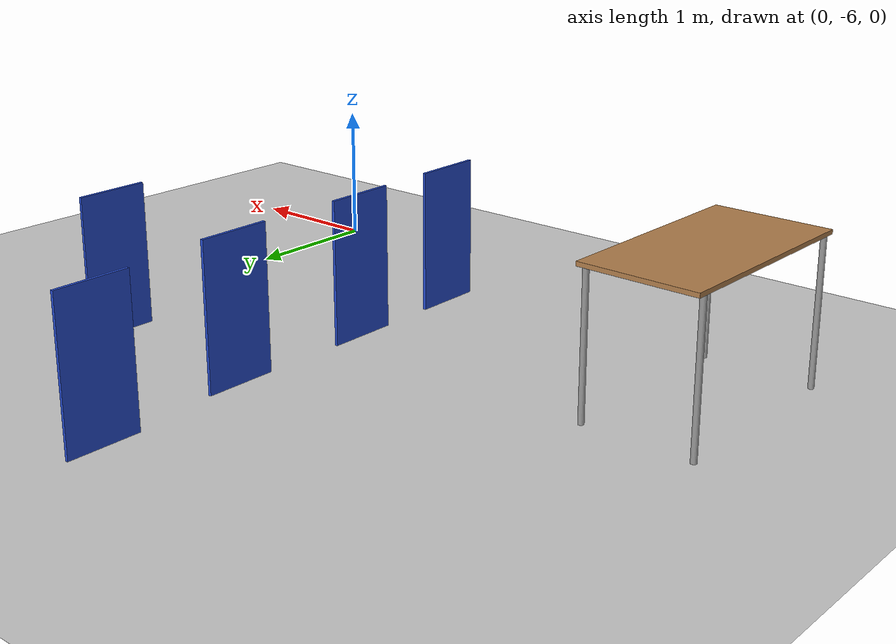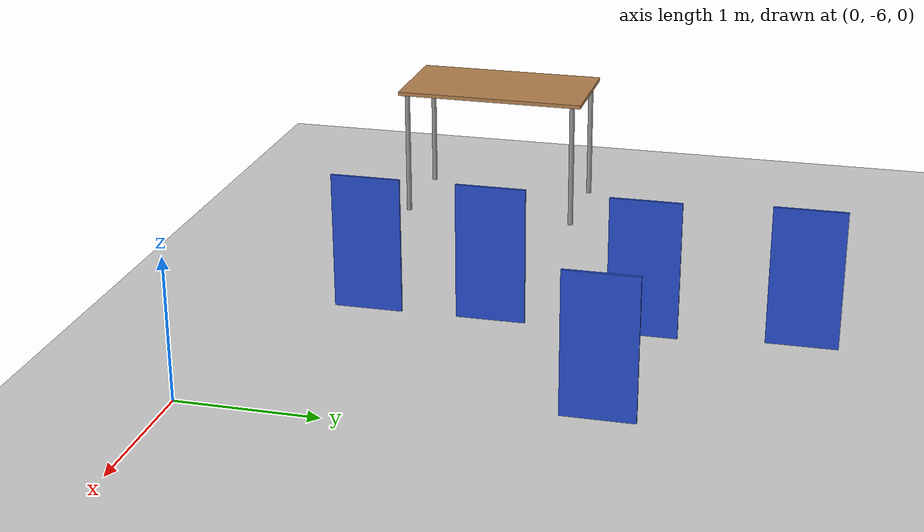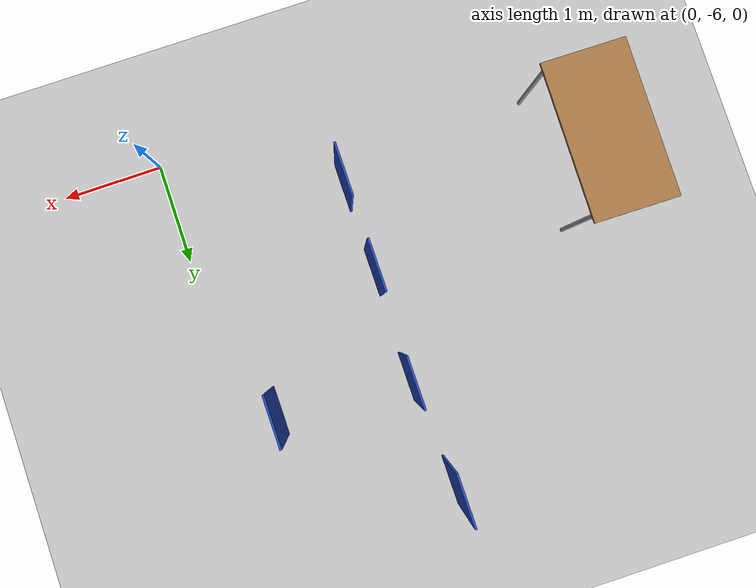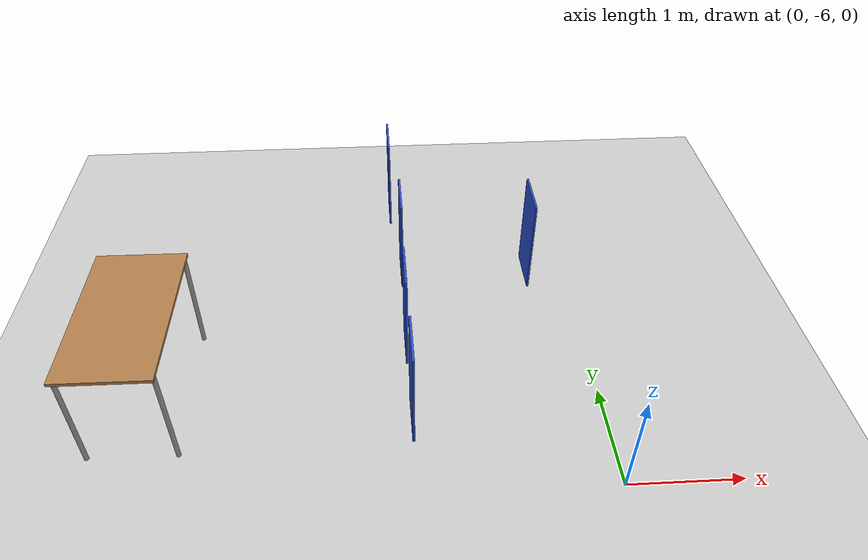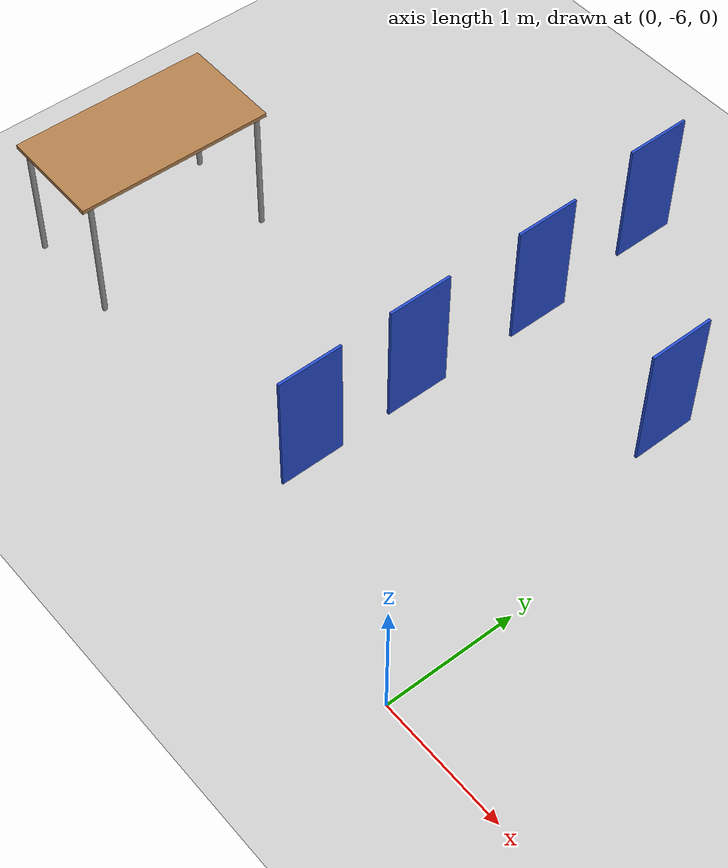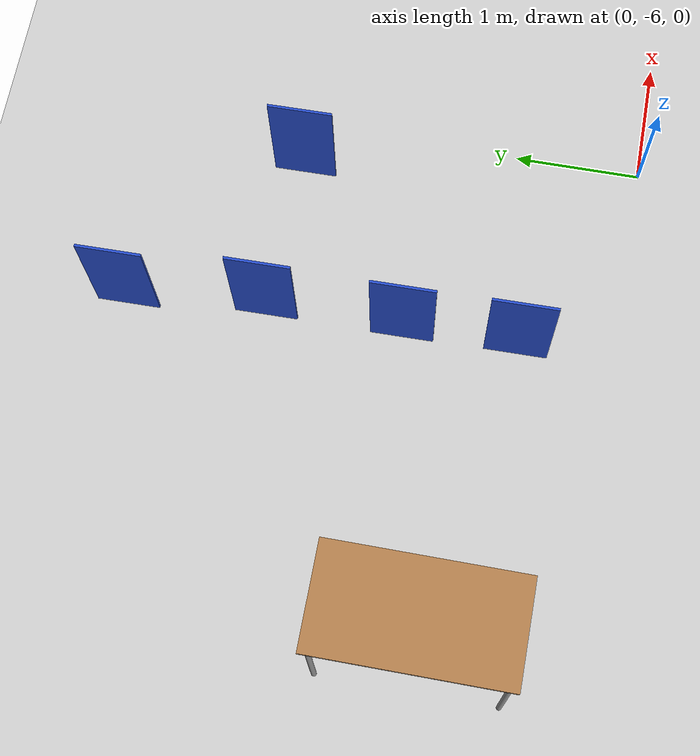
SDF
<sdf version="1.6">
 <world name="default">
  <model name="ground_plane">
   <static>1</static>
   <link name="link">
    <collision name="collision">
     <geometry><plane><normal>0 0 1</normal><size>100 100</size></plane></geometry>
     <surface><friction><ode><mu>100</mu><mu2>50</mu2></ode></friction></surface>
    </collision>
    <visual name="visual">
     <cast_shadows>0</cast_shadows>
     <geometry><plane><normal>0 0 1</normal><size>100 100</size></plane></geometry>
     <material>
      <script><uri>file://media/materials/scripts/gazebo.material</uri><name>Gazebo/Grey</name></script>
     </material>
    </visual>
   </link>
  </model>
  <model name="table_0">
   <static>1</static>
   <link name="link">
    <collision name="surface">
     <pose>0 0 1 0 -0 0</pose>
     <geometry><box><size>1.5 0.8 0.03</size></box></geometry>
     <surface><friction><ode><mu>0.6</mu><mu2>0.6</mu2></ode></friction></surface>
    </collision>
    <visual name="visual1">
     <pose>0 0 1 0 -0 0</pose>
     <geometry><box><size>1.5 0.8 0.03</size></box></geometry>
     <material>
      <script><uri>file://media/materials/scripts/gazebo.material</uri><name>Gazebo/Wood</name></script>
     </material>
    </visual>
    <collision name="front_left_leg">
     <pose>0.68 0.38 0.5 0 -0 0</pose>
     <geometry><cylinder><radius>0.02</radius><length>1</length></cylinder></geometry>
    </collision>
    <visual name="front_left_leg">
     <pose>0.68 0.38 0.5 0 -0 0</pose>
     <geometry><cylinder><radius>0.02</radius><length>1</length></cylinder></geometry>
     <material>
      <script><uri>file://media/materials/scripts/gazebo.material</uri><name>Gazebo/Grey</name></script>
     </material>
    </visual>
    <collision name="front_right_leg">
     <pose>0.68 -0.38 0.5 0 -0 0</pose>
     <geometry><cylinder><radius>0.02</radius><length>1</length></cylinder></geometry>
    </collision>
    <visual name="front_right_leg">
     <pose>0.68 -0.38 0.5 0 -0 0</pose>
     <geometry><cylinder><radius>0.02</radius><length>1</length></cylinder></geometry>
     <material>
      <script><uri>file://media/materials/scripts/gazebo.material</uri><name>Gazebo/Grey</name></script>
     </material>
    </visual>
    <collision name="back_right_leg">
     <pose>-0.68 -0.38 0.5 0 -0 0</pose>
     <geometry><cylinder><radius>0.02</radius><length>1</length></cylinder></geometry>
    </collision>
    <visual name="back_right_leg">
     <pose>-0.68 -0.38 0.5 0 -0 0</pose>
     <geometry><cylinder><radius>0.02</radius><length>1</length></cylinder></geometry>
     <material>
      <script><uri>file://media/materials/scripts/gazebo.material</uri><name>Gazebo/Grey</name></script>
     </material>
    </visual>
    <collision name="back_left_leg">
     <pose>-0.68 0.38 0.5 0 -0 0</pose>
     <geometry><cylinder><radius>0.02</radius><length>1</length></cylinder></geometry>
    </collision>
    <visual name="back_left_leg">
     <pose>-0.68 0.38 0.5 0 -0 0</pose>
     <geometry><cylinder><radius>0.02</radius><length>1</length></cylinder></geometry>
     <material>
      <script><uri>file://media/materials/scripts/gazebo.material</uri><name>Gazebo/Grey</name></script>
     </material>
    </visual>
   </link>
   <pose>-4.03117 -4.81166 0 0 0 -1.57951</pose>
  </model>
  <model name="picture_clone_clone">
   <link name="link">
    <pose>0.161006 0.582358 0 0 -0 0</pose>
    <inertial>
     <mass>1</mass>
     <inertia>
      <ixx>0.166667</ixx>
      <ixy>0</ixy>
      <ixz>0</ixz>
      <iyy>0.166667</iyy>
      <iyz>0</iyz>
      <izz>0.166667</izz>
     </inertia>
    </inertial>
    <visual name="visual">
     <geometry><box><size>0.5 0.02 1</size></box></geometry>
     <material>
      <script><name>Gazebo/Blue</name><uri>file://media/materials/scripts/gazebo.material</uri></script>
      <shader type="pixel"><normal_map>__default__</normal_map></shader>
      <ambient>0.3 0.3 0.3 1</ambient>
      <diffuse>0.7 0.7 0.7 1</diffuse>
      <specular>0.01 0.01 0.01 1</specular>
      <emissive>0 0 0 1</emissive>
     </material>
    </visual>
    <collision name="collision">
     <geometry><box><size>0.5 0.02 1</size></box></geometry>
     <surface>
      <friction>
       <ode><mu>1</mu><mu2>1</mu2><fdir1>0 0 0</fdir1><slip1>0</slip1><slip2>0</slip2></ode>
       <torsional>
        <coefficient>1</coefficient>
        <patch_radius>0</patch_radius>
        <surface_radius>0</surface_radius>
        <use_patch_radius>1</use_patch_radius>
        <ode><slip>0</slip></ode>
       </torsional>
      </friction>
      <bounce><restitution_coefficient>0</restitution_coefficient><threshold>1e+06</threshold></bounce>
      <contact>
       <collide_without_contact>0</collide_without_contact>
       <collide_without_contact_bitmask>1</collide_without_contact_bitmask>
       <collide_bitmask>1</collide_bitmask>
       <ode>
        <soft_cfm>0</soft_cfm>
        <soft_erp>0.2</soft_erp>
        <kp>1e+13</kp>
        <kd>1</kd>
        <max_vel>0.01</max_vel>
        <min_depth>0</min_depth>
       </ode>
       <bullet>
        <split_impulse>1</split_impulse>
        <split_impulse_penetration_threshold>-0.01</split_impulse_penetration_threshold>
        <soft_cfm>0</soft_cfm>
        <soft_erp>0.2</soft_erp>
        <kp>1e+13</kp>
        <kd>1</kd>
       </bullet>
      </contact>
     </surface>
    </collision>
   </link>
   <static>0</static>
   <pose>-2.36946 -1.98256 0.5 0 0 -1.56428</pose>
  </model>
  <model name="picture_clone_clone_clone">
   <link name="link">
    <pose>0.161006 0.582358 0 0 -0 0</pose>
    <inertial>
     <mass>1</mass>
     <inertia>
      <ixx>0.166667</ixx>
      <ixy>0</ixy>
      <ixz>0</ixz>
      <iyy>0.166667</iyy>
      <iyz>0</iyz>
      <izz>0.166667</izz>
     </inertia>
    </inertial>
    <visual name="visual">
     <geometry><box><size>0.5 0.02 1</size></box></geometry>
     <material>
      <script><name>Gazebo/Blue</name><uri>file://media/materials/scripts/gazebo.material</uri></script>
      <shader type="pixel"><normal_map>__default__</normal_map></shader>
      <ambient>0.3 0.3 0.3 1</ambient>
      <diffuse>0.7 0.7 0.7 1</diffuse>
      <specular>0.01 0.01 0.01 1</specular>
      <emissive>0 0 0 1</emissive>
     </material>
    </visual>
    <collision name="collision">
     <geometry><box><size>0.5 0.02 1</size></box></geometry>
     <surface>
      <friction>
       <ode><mu>1</mu><mu2>1</mu2><fdir1>0 0 0</fdir1><slip1>0</slip1><slip2>0</slip2></ode>
       <torsional>
        <coefficient>1</coefficient>
        <patch_radius>0</patch_radius>
        <surface_radius>0</surface_radius>
        <use_patch_radius>1</use_patch_radius>
        <ode><slip>0</slip></ode>
       </torsional>
      </friction>
      <bounce><restitution_coefficient>0</restitution_coefficient><threshold>1e+06</threshold></bounce>
      <contact>
       <collide_without_contact>0</collide_without_contact>
       <collide_without_contact_bitmask>1</collide_without_contact_bitmask>
       <collide_bitmask>1</collide_bitmask>
       <ode>
        <soft_cfm>0</soft_cfm>
        <soft_erp>0.2</soft_erp>
        <kp>1e+13</kp>
        <kd>1</kd>
        <max_vel>0.01</max_vel>
        <min_depth>0</min_depth>
       </ode>
       <bullet>
        <split_impulse>1</split_impulse>
        <split_impulse_penetration_threshold>-0.01</split_impulse_penetration_threshold>
        <soft_cfm>0</soft_cfm>
        <soft_erp>0.2</soft_erp>
        <kp>1e+13</kp>
        <kd>1</kd>
       </bullet>
      </contact>
     </surface>
    </collision>
   </link>
   <static>0</static>
   <pose>-2.28498 -4.16332 0.5 0 0 -1.56428</pose>
  </model>
  <model name="picture_clone_clone_clone_0">
   <link name="link">
    <pose>0.161006 0.582358 0 0 -0 0</pose>
    <inertial>
     <mass>1</mass>
     <inertia>
      <ixx>0.166667</ixx>
      <ixy>0</ixy>
      <ixz>0</ixz>
      <iyy>0.166667</iyy>
      <iyz>0</iyz>
      <izz>0.166667</izz>
     </inertia>
    </inertial>
    <visual name="visual">
     <geometry><box><size>0.5 0.02 1</size></box></geometry>
     <material>
      <script><name>Gazebo/Blue</name><uri>file://media/materials/scripts/gazebo.material</uri></script>
      <shader type="pixel"><normal_map>__default__</normal_map></shader>
      <ambient>0.3 0.3 0.3 1</ambient>
      <diffuse>0.7 0.7 0.7 1</diffuse>
      <specular>0.01 0.01 0.01 1</specular>
      <emissive>0 0 0 1</emissive>
     </material>
    </visual>
    <collision name="collision">
     <geometry><box><size>0.5 0.02 1</size></box></geometry>
     <surface>
      <friction>
       <ode><mu>1</mu><mu2>1</mu2><fdir1>0 0 0</fdir1><slip1>0</slip1><slip2>0</slip2></ode>
       <torsional>
        <coefficient>1</coefficient>
        <patch_radius>0</patch_radius>
        <surface_radius>0</surface_radius>
        <use_patch_radius>1</use_patch_radius>
        <ode><slip>0</slip></ode>
       </torsional>
      </friction>
      <bounce><restitution_coefficient>0</restitution_coefficient><threshold>1e+06</threshold></bounce>
      <contact>
       <collide_without_contact>0</collide_without_contact>
       <collide_without_contact_bitmask>1</collide_without_contact_bitmask>
       <collide_bitmask>1</collide_bitmask>
       <ode>
        <soft_cfm>0</soft_cfm>
        <soft_erp>0.2</soft_erp>
        <kp>1e+13</kp>
        <kd>1</kd>
        <max_vel>0.01</max_vel>
        <min_depth>0</min_depth>
       </ode>
       <bullet>
        <split_impulse>1</split_impulse>
        <split_impulse_penetration_threshold>-0.01</split_impulse_penetration_threshold>
        <soft_cfm>0</soft_cfm>
        <soft_erp>0.2</soft_erp>
        <kp>1e+13</kp>
        <kd>1</kd>
       </bullet>
      </contact>
     </surface>
    </collision>
   </link>
   <static>0</static>
   <pose>-2.28053 -3.0775 0.5 0 0 -1.56428</pose>
  </model>
  <model name="picture_clone_clone_clone_0_clone">
   <link name="link">
    <pose>0.161006 0.582358 0 0 -0 0</pose>
    <inertial>
     <mass>1</mass>
     <inertia>
      <ixx>0.166667</ixx>
      <ixy>0</ixy>
      <ixz>0</ixz>
      <iyy>0.166667</iyy>
      <iyz>0</iyz>
      <izz>0.166667</izz>
     </inertia>
    </inertial>
    <visual name="visual">
     <geometry><box><size>0.5 0.02 1</size></box></geometry>
     <material>
      <script><name>Gazebo/Blue</name><uri>file://media/materials/scripts/gazebo.material</uri></script>
      <shader type="pixel"><normal_map>__default__</normal_map></shader>
      <ambient>0.3 0.3 0.3 1</ambient>
      <diffuse>0.7 0.7 0.7 1</diffuse>
      <specular>0.01 0.01 0.01 1</specular>
      <emissive>0 0 0 1</emissive>
     </material>
    </visual>
    <collision name="collision">
     <geometry><box><size>0.5 0.02 1</size></box></geometry>
     <surface>
      <friction>
       <ode><mu>1</mu><mu2>1</mu2><fdir1>0 0 0</fdir1><slip1>0</slip1><slip2>0</slip2></ode>
       <torsional>
        <coefficient>1</coefficient>
        <patch_radius>0</patch_radius>
        <surface_radius>0</surface_radius>
        <use_patch_radius>1</use_patch_radius>
        <ode><slip>0</slip></ode>
       </torsional>
      </friction>
      <bounce><restitution_coefficient>0</restitution_coefficient><threshold>1e+06</threshold></bounce>
      <contact>
       <collide_without_contact>0</collide_without_contact>
       <collide_without_contact_bitmask>1</collide_without_contact_bitmask>
       <collide_bitmask>1</collide_bitmask>
       <ode>
        <soft_cfm>0</soft_cfm>
        <soft_erp>0.2</soft_erp>
        <kp>1e+13</kp>
        <kd>1</kd>
        <max_vel>0.01</max_vel>
        <min_depth>0</min_depth>
       </ode>
       <bullet>
        <split_impulse>1</split_impulse>
        <split_impulse_penetration_threshold>-0.01</split_impulse_penetration_threshold>
        <soft_cfm>0</soft_cfm>
        <soft_erp>0.2</soft_erp>
        <kp>1e+13</kp>
        <kd>1</kd>
       </bullet>
      </contact>
     </surface>
    </collision>
   </link>
   <static>0</static>
   <pose>-0.986081 -3.14712 0.5 0 0 -1.56428</pose>
  </model>
  <model name="picture_clone_clone_clone_0_clone_0">
   <link name="link">
    <pose>0.161006 0.582358 0 0 -0 0</pose>
    <inertial>
     <mass>1</mass>
     <inertia>
      <ixx>0.166667</ixx>
      <ixy>0</ixy>
      <ixz>0</ixz>
      <iyy>0.166667</iyy>
      <iyz>0</iyz>
      <izz>0.166667</izz>
     </inertia>
    </inertial>
    <visual name="visual">
     <geometry><box><size>0.5 0.02 1</size></box></geometry>
     <material>
      <script><name>Gazebo/Blue</name><uri>file://media/materials/scripts/gazebo.material</uri></script>
      <shader type="pixel"><normal_map>__default__</normal_map></shader>
      <ambient>0.3 0.3 0.3 1</ambient>
      <diffuse>0.7 0.7 0.7 1</diffuse>
      <specular>0.01 0.01 0.01 1</specular>
      <emissive>0 0 0 1</emissive>
     </material>
    </visual>
    <collision name="collision">
     <geometry><box><size>0.5 0.02 1</size></box></geometry>
     <surface>
      <friction>
       <ode><mu>1</mu><mu2>1</mu2><fdir1>0 0 0</fdir1><slip1>0</slip1><slip2>0</slip2></ode>
       <torsional>
        <coefficient>1</coefficient>
        <patch_radius>0</patch_radius>
        <surface_radius>0</surface_radius>
        <use_patch_radius>1</use_patch_radius>
        <ode><slip>0</slip></ode>
       </torsional>
      </friction>
      <bounce><restitution_coefficient>0</restitution_coefficient><threshold>1e+06</threshold></bounce>
      <contact>
       <collide_without_contact>0</collide_without_contact>
       <collide_without_contact_bitmask>1</collide_without_contact_bitmask>
       <collide_bitmask>1</collide_bitmask>
       <ode>
        <soft_cfm>0</soft_cfm>
        <soft_erp>0.2</soft_erp>
        <kp>1e+13</kp>
        <kd>1</kd>
        <max_vel>0.01</max_vel>
        <min_depth>0</min_depth>
       </ode>
       <bullet>
        <split_impulse>1</split_impulse>
        <split_impulse_penetration_threshold>-0.01</split_impulse_penetration_threshold>
        <soft_cfm>0</soft_cfm>
        <soft_erp>0.2</soft_erp>
        <kp>1e+13</kp>
        <kd>1</kd>
       </bullet>
      </contact>
     </surface>
    </collision>
   </link>
   <static>0</static>
   <pose>-2.27186 -5.0632 0.5 0 0 -1.56428</pose>
  </model>
 </world>
</sdf>
